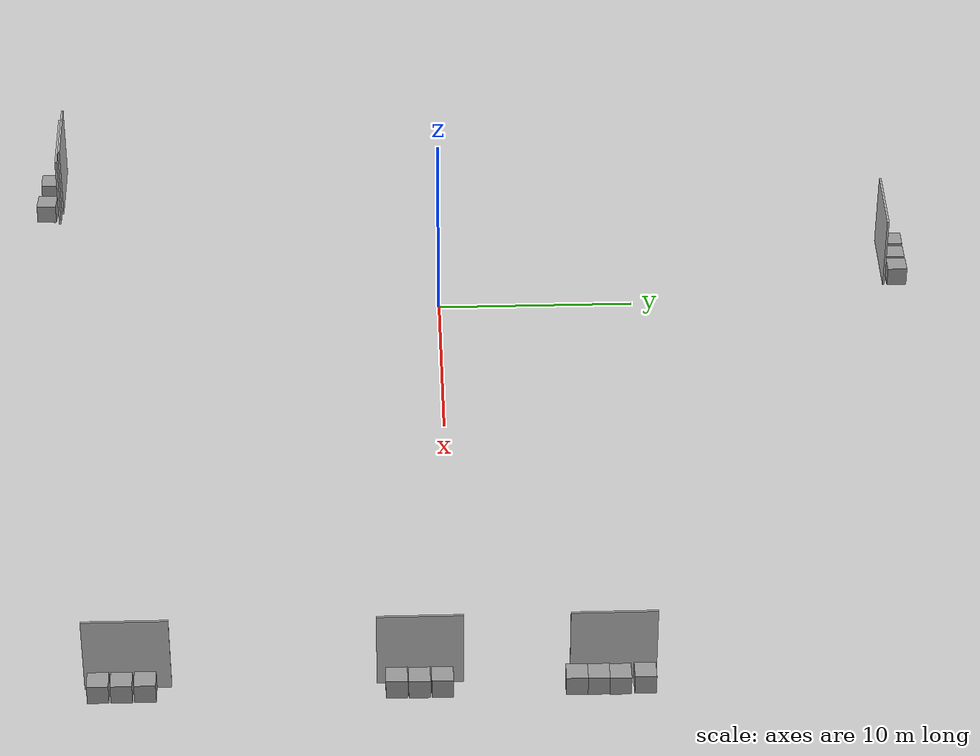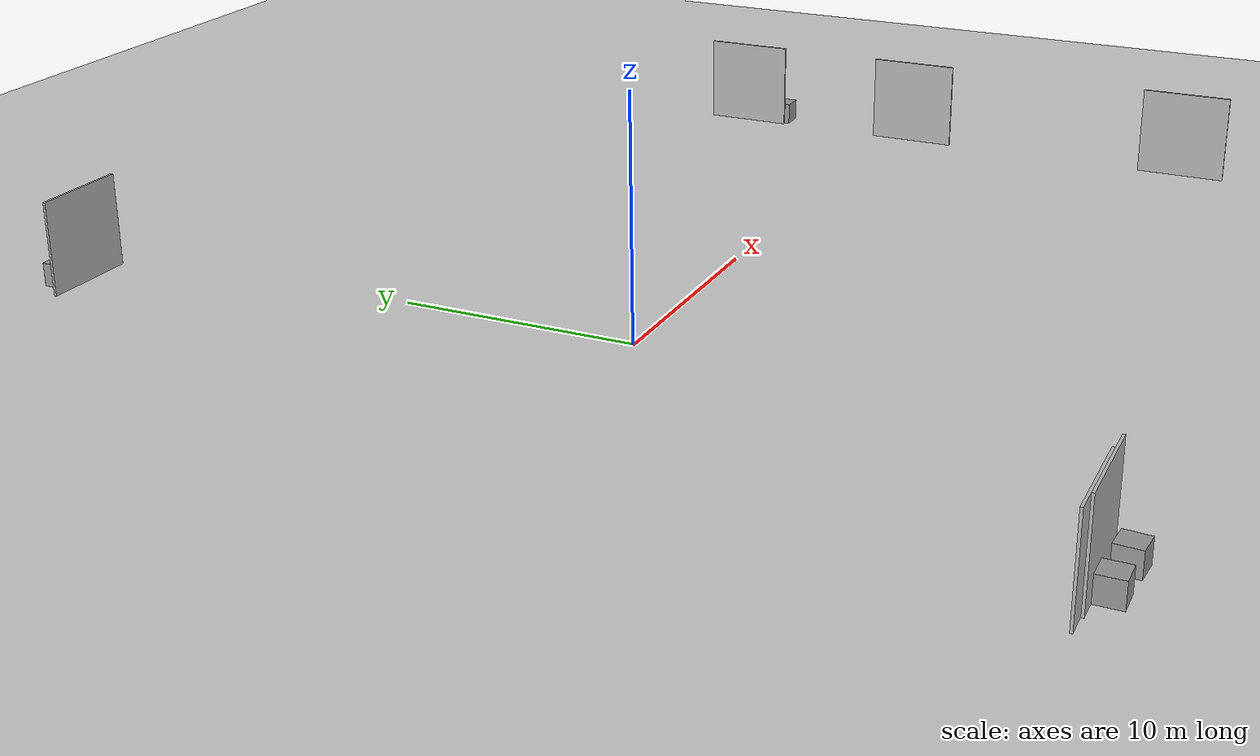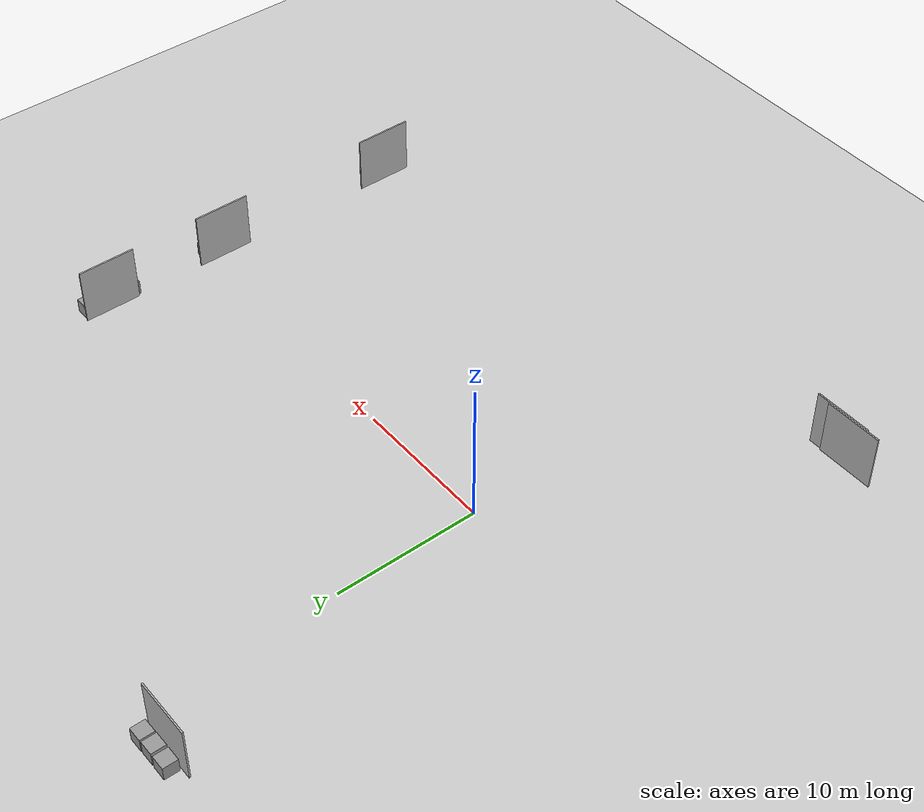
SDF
<sdf version="1.6">
 <world name="default">
  <model name="ground_plane">
   <static>1</static>
   <link name="link">
    <collision name="collision">
     <geometry><plane><normal>0 0 1</normal><size>100 100</size></plane></geometry>
     <surface><friction><ode><mu>100</mu><mu2>50</mu2></ode></friction></surface>
    </collision>
    <visual name="visual">
     <cast_shadows>0</cast_shadows>
     <geometry><plane><normal>0 0 1</normal><size>100 100</size></plane></geometry>
     <material>
      <script><uri>file://media/materials/scripts/gazebo.material</uri><name>Gazebo/Grey</name></script>
     </material>
    </visual>
   </link>
  </model>
  <light name="sun" type="directional">
   <pose>0 0 10 0 -0 0</pose>
   <diffuse>0.8 0.8 0.8 1</diffuse>
   <specular>0.2 0.2 0.2 1</specular>
   <attenuation>
    <range>1000</range>
    <constant>0.9</constant>
    <linear>0.01</linear>
    <quadratic>0.001</quadratic>
   </attenuation>
   <direction>-0.5 0.1 -0.9</direction>
  </light>
  <gravity>0 0 -9.8</gravity>
  <magnetic_field>6e-06 2.3e-05 -4.2e-05</magnetic_field>
  <atmosphere type="adiabatic"/>
  <physics name="default_physics" default="0" type="ode">
   <max_step_size>0.001</max_step_size>
   <real_time_factor>1</real_time_factor>
   <real_time_update_rate>1000</real_time_update_rate>
  </physics>
  <scene><ambient>0.4 0.4 0.4 1</ambient><background>0.7 0.7 0.7 1</background><shadows>1</shadows></scene>
  <audio><device>default</device></audio>
  <spherical_coordinates>
   <surface_model>EARTH_WGS84</surface_model>
   <latitude_deg>0</latitude_deg>
   <longitude_deg>0</longitude_deg>
   <elevation>0</elevation>
   <heading_deg>0</heading_deg>
  </spherical_coordinates>
  <model name="unit_box_0">
   <pose>29.5694 -15.2995 0.499995 0 -1e-05 -0.001319</pose>
   <link name="link">
    <inertial>
     <mass>1</mass>
     <inertia>
      <ixx>0.166667</ixx>
      <ixy>0</ixy>
      <ixz>0</ixz>
      <iyy>0.166667</iyy>
      <iyz>0</iyz>
      <izz>0.166667</izz>
     </inertia>
    </inertial>
    <collision name="collision"><geometry><box><size>1 1 1</size></box></geometry></collision>
    <visual name="visual">
     <geometry><box><size>1 1 1</size></box></geometry>
     <material>
      <script><name>Gazebo/Grey</name><uri>file://media/materials/scripts/gazebo.material</uri></script>
     </material>
    </visual>
   </link>
  </model>
  <model name="unit_box_1">
   <pose>29.6409 -1.65629 0.499995 1e-05 -0 -6e-06</pose>
   <link name="link">
    <inertial>
     <mass>1</mass>
     <inertia>
      <ixx>0.166667</ixx>
      <ixy>0</ixy>
      <ixz>0</ixz>
      <iyy>0.166667</iyy>
      <iyz>0</iyz>
      <izz>0.166667</izz>
     </inertia>
    </inertial>
    <collision name="collision"><geometry><box><size>1 1 1</size></box></geometry></collision>
    <visual name="visual">
     <geometry><box><size>1 1 1</size></box></geometry>
     <material>
      <script><name>Gazebo/Grey</name><uri>file://media/materials/scripts/gazebo.material</uri></script>
     </material>
    </visual>
   </link>
  </model>
  <model name="unit_box_2">
   <pose>29.6316 8.72066 0.499995 0 -1e-05 -0.004184</pose>
   <link name="link">
    <inertial>
     <mass>1</mass>
     <inertia>
      <ixx>0.166667</ixx>
      <ixy>0</ixy>
      <ixz>0</ixz>
      <iyy>0.166667</iyy>
      <iyz>0</iyz>
      <izz>0.166667</izz>
     </inertia>
    </inertial>
    <collision name="collision"><geometry><box><size>1 1 1</size></box></geometry></collision>
    <visual name="visual">
     <geometry><box><size>1 1 1</size></box></geometry>
     <material>
      <script><name>Gazebo/Grey</name><uri>file://media/materials/scripts/gazebo.material</uri></script>
     </material>
    </visual>
   </link>
  </model>
  <model name="unit_box_3">
   <pose>29.6754 7.57235 0.499995 0 -1e-05 -0.004337</pose>
   <link name="link">
    <inertial>
     <mass>1</mass>
     <inertia>
      <ixx>0.166667</ixx>
      <ixy>0</ixy>
      <ixz>0</ixz>
      <iyy>0.166667</iyy>
      <iyz>0</iyz>
      <izz>0.166667</izz>
     </inertia>
    </inertial>
    <collision name="collision"><geometry><box><size>1 1 1</size></box></geometry></collision>
    <visual name="visual">
     <geometry><box><size>1 1 1</size></box></geometry>
     <material>
      <script><name>Gazebo/Grey</name><uri>file://media/materials/scripts/gazebo.material</uri></script>
     </material>
    </visual>
   </link>
  </model>
  <model name="unit_box">
   <pose>-10.764 -20.5788 0.499995 -1e-05 0 0.000329</pose>
   <link name="link">
    <inertial>
     <mass>1</mass>
     <inertia>
      <ixx>0.166667</ixx>
      <ixy>0</ixy>
      <ixz>0</ixz>
      <iyy>0.166667</iyy>
      <iyz>0</iyz>
      <izz>0.166667</izz>
     </inertia>
    </inertial>
    <collision name="collision"><geometry><box><size>1 1 1</size></box></geometry></collision>
    <visual name="visual">
     <geometry><box><size>1 1 1</size></box></geometry>
     <material>
      <script><name>Gazebo/Grey</name><uri>file://media/materials/scripts/gazebo.material</uri></script>
     </material>
    </visual>
   </link>
  </model>
  <model name="unit_box_6">
   <pose>-8.82253 -20.7003 0.499998 4e-06 -0 -0.073141</pose>
   <link name="link">
    <inertial>
     <mass>1</mass>
     <inertia>
      <ixx>0.166667</ixx>
      <ixy>0</ixy>
      <ixz>0</ixz>
      <iyy>0.166667</iyy>
      <iyz>0</iyz>
      <izz>0.166667</izz>
     </inertia>
    </inertial>
    <collision name="collision"><geometry><box><size>1 1 1</size></box></geometry></collision>
    <visual name="visual">
     <geometry><box><size>1 1 1</size></box></geometry>
     <material>
      <script><name>Gazebo/Grey</name><uri>file://media/materials/scripts/gazebo.material</uri></script>
     </material>
    </visual>
   </link>
  </model>
  <model name="Van_gogh1">
   <pose>-4.76066 23.3314 2 -0 3.3e-05 1.56157</pose>
   <link name="box">
    <pose>0 -1.5 0 0 -0 0</pose>
    <collision name="collision"><geometry><box><size>0.1 4 4</size></box></geometry></collision>
    <visual name="visual">
     <geometry><box><size>0.1 4 4</size></box></geometry>
     <material>
      <script>
       <uri>model://van_gogh1/materials/scripts</uri>
       <uri>model://van_gogh1/materials/textures</uri>
       <name>Van_gogh1/Image</name>
      </script>
     </material>
    </visual>
    <inertial>
     <inertia><ixx>1</ixx><ixy>0</ixy><ixz>0</ixz><iyy>1</iyy><iyz>0</iyz><izz>1</izz></inertia>
     <mass>1</mass>
    </inertial>
   </link>
  </model>
  <model name="unit_box_4">
   <pose>-1.76028 23.9773 0.499995 1e-05 -0 1.9e-05</pose>
   <link name="link">
    <inertial>
     <mass>1</mass>
     <inertia>
      <ixx>0.166667</ixx>
      <ixy>0</ixy>
      <ixz>0</ixz>
      <iyy>0.166667</iyy>
      <iyz>0</iyz>
      <izz>0.166667</izz>
     </inertia>
    </inertial>
    <collision name="collision"><geometry><box><size>1 1 1</size></box></geometry></collision>
    <visual name="visual">
     <geometry><box><size>1 1 1</size></box></geometry>
     <material>
      <script><name>Gazebo/Grey</name><uri>file://media/materials/scripts/gazebo.material</uri></script>
     </material>
    </visual>
   </link>
  </model>
  <model name="unit_box_5">
   <pose>-2.86607 23.9664 0.499995 1e-05 -0 0</pose>
   <link name="link">
    <inertial>
     <mass>1</mass>
     <inertia>
      <ixx>0.166667</ixx>
      <ixy>0</ixy>
      <ixz>0</ixz>
      <iyy>0.166667</iyy>
      <iyz>0</iyz>
      <izz>0.166667</izz>
     </inertia>
    </inertial>
    <collision name="collision"><geometry><box><size>1 1 1</size></box></geometry></collision>
    <visual name="visual">
     <geometry><box><size>1 1 1</size></box></geometry>
     <material>
      <script><name>Gazebo/Grey</name><uri>file://media/materials/scripts/gazebo.material</uri></script>
     </material>
    </visual>
   </link>
  </model>
  <model name="unit_box_7">
   <pose>-4.0375 23.9801 0.499995 1e-05 -0 -0.011993</pose>
   <link name="link">
    <inertial>
     <mass>1</mass>
     <inertia>
      <ixx>0.166667</ixx>
      <ixy>0</ixy>
      <ixz>0</ixz>
      <iyy>0.166667</iyy>
      <iyz>0</iyz>
      <izz>0.166667</izz>
     </inertia>
    </inertial>
    <collision name="collision"><geometry><box><size>1 1 1</size></box></geometry></collision>
    <visual name="visual">
     <geometry><box><size>1 1 1</size></box></geometry>
     <material>
      <script><name>Gazebo/Grey</name><uri>file://media/materials/scripts/gazebo.material</uri></script>
     </material>
    </visual>
   </link>
  </model>
  <model name="Van_gogh1_0">
   <pose>29.0081 8.78444 2 -0 -2e-06 0.001567</pose>
   <link name="box">
    <pose>0 -1.5 0 0 -0 0</pose>
    <collision name="collision"><geometry><box><size>0.1 4 4</size></box></geometry></collision>
    <visual name="visual">
     <geometry><box><size>0.1 4 4</size></box></geometry>
     <material>
      <script>
       <uri>model://van_gogh1/materials/scripts</uri>
       <uri>model://van_gogh1/materials/textures</uri>
       <name>Van_gogh1/Image</name>
      </script>
     </material>
    </visual>
    <inertial>
     <inertia><ixx>1</ixx><ixy>0</ixy><ixz>0</ixz><iyy>1</iyy><iyz>0</iyz><izz>1</izz></inertia>
     <mass>1</mass>
    </inertial>
   </link>
  </model>
  <model name="unit_box_8">
   <pose>29.6461 6.57244 0.499995 0 -1e-05 -0.004304</pose>
   <link name="link">
    <inertial>
     <mass>1</mass>
     <inertia>
      <ixx>0.166667</ixx>
      <ixy>0</ixy>
      <ixz>0</ixz>
      <iyy>0.166667</iyy>
      <iyz>0</iyz>
      <izz>0.166667</izz>
     </inertia>
    </inertial>
    <collision name="collision"><geometry><box><size>1 1 1</size></box></geometry></collision>
    <visual name="visual">
     <geometry><box><size>1 1 1</size></box></geometry>
     <material>
      <script><name>Gazebo/Grey</name><uri>file://media/materials/scripts/gazebo.material</uri></script>
     </material>
    </visual>
   </link>
  </model>
  <model name="unit_box_9">
   <pose>29.6379 5.57242 0.499995 0 -1e-05 -0.004268</pose>
   <link name="link">
    <inertial>
     <mass>1</mass>
     <inertia>
      <ixx>0.166667</ixx>
      <ixy>0</ixy>
      <ixz>0</ixz>
      <iyy>0.166667</iyy>
      <iyz>0</iyz>
      <izz>0.166667</izz>
     </inertia>
    </inertial>
    <collision name="collision"><geometry><box><size>1 1 1</size></box></geometry></collision>
    <visual name="visual">
     <geometry><box><size>1 1 1</size></box></geometry>
     <material>
      <script><name>Gazebo/Grey</name><uri>file://media/materials/scripts/gazebo.material</uri></script>
     </material>
    </visual>
   </link>
  </model>
  <model name="Wall_painting1">
   <pose>29.0299 -0.097745 2 0 -0 8e-06</pose>
   <link name="box">
    <pose>0 -1.5 0 0 -0 0</pose>
    <collision name="collision"><geometry><box><size>0.1 4 4</size></box></geometry></collision>
    <visual name="visual">
     <geometry><box><size>0.1 4 4</size></box></geometry>
     <material>
      <script>
       <uri>model://wall_painting1/materials/scripts</uri>
       <uri>model://wall_painting1/materials/textures</uri>
       <name>Wall_painting1/Image</name>
      </script>
     </material>
    </visual>
    <inertial>
     <inertia><ixx>1</ixx><ixy>0</ixy><ixz>0</ixz><iyy>1</iyy><iyz>0</iyz><izz>1</izz></inertia>
     <mass>1</mass>
    </inertial>
   </link>
  </model>
  <model name="unit_box_1_clone">
   <pose>29.6283 -0.598212 0.499995 0 -1e-05 -5e-06</pose>
   <link name="link">
    <inertial>
     <mass>1</mass>
     <inertia>
      <ixx>0.166667</ixx>
      <ixy>0</ixy>
      <ixz>0</ixz>
      <iyy>0.166667</iyy>
      <iyz>0</iyz>
      <izz>0.166667</izz>
     </inertia>
    </inertial>
    <collision name="collision"><geometry><box><size>1 1 1</size></box></geometry></collision>
    <visual name="visual">
     <geometry><box><size>1 1 1</size></box></geometry>
     <material>
      <script><name>Gazebo/Grey</name><uri>file://media/materials/scripts/gazebo.material</uri></script>
     </material>
    </visual>
   </link>
  </model>
  <model name="unit_box_1_clone_0">
   <pose>29.6108 -2.70263 0.499995 1e-05 -0 -5e-06</pose>
   <link name="link">
    <inertial>
     <mass>1</mass>
     <inertia>
      <ixx>0.166667</ixx>
      <ixy>0</ixy>
      <ixz>0</ixz>
      <iyy>0.166667</iyy>
      <iyz>0</iyz>
      <izz>0.166667</izz>
     </inertia>
    </inertial>
    <collision name="collision"><geometry><box><size>1 1 1</size></box></geometry></collision>
    <visual name="visual">
     <geometry><box><size>1 1 1</size></box></geometry>
     <material>
      <script><name>Gazebo/Grey</name><uri>file://media/materials/scripts/gazebo.material</uri></script>
     </material>
    </visual>
   </link>
  </model>
  <model name="Van_gogh12">
   <pose>29.007 -13.5362 2 0 -0 0</pose>
   <link name="box">
    <pose>0 -1.5 0 0 -0 0</pose>
    <collision name="collision"><geometry><box><size>0.1 4 4</size></box></geometry></collision>
    <visual name="visual">
     <geometry><box><size>0.1 4 4</size></box></geometry>
     <material>
      <script>
       <uri>model://van_gogh12/materials/scripts</uri>
       <uri>model://van_gogh12/materials/textures</uri>
       <name>Van_gogh12/Image</name>
      </script>
     </material>
    </visual>
    <inertial>
     <inertia><ixx>1</ixx><ixy>0</ixy><ixz>0</ixz><iyy>1</iyy><iyz>0</iyz><izz>1</izz></inertia>
     <mass>1</mass>
    </inertial>
   </link>
  </model>
  <model name="unit_box_0_clone">
   <pose>29.5572 -14.2163 0.499995 -1e-05 -0 4e-05</pose>
   <link name="link">
    <inertial>
     <mass>1</mass>
     <inertia>
      <ixx>0.166667</ixx>
      <ixy>0</ixy>
      <ixz>0</ixz>
      <iyy>0.166667</iyy>
      <iyz>0</iyz>
      <izz>0.166667</izz>
     </inertia>
    </inertial>
    <collision name="collision"><geometry><box><size>1 1 1</size></box></geometry></collision>
    <visual name="visual">
     <geometry><box><size>1 1 1</size></box></geometry>
     <material>
      <script><name>Gazebo/Grey</name><uri>file://media/materials/scripts/gazebo.material</uri></script>
     </material>
    </visual>
   </link>
  </model>
  <model name="unit_box_0_clone_0">
   <pose>29.5584 -16.3784 0.499995 -1e-05 -0 -0.000364</pose>
   <link name="link">
    <inertial>
     <mass>1</mass>
     <inertia>
      <ixx>0.166667</ixx>
      <ixy>0</ixy>
      <ixz>0</ixz>
      <iyy>0.166667</iyy>
      <iyz>0</iyz>
      <izz>0.166667</izz>
     </inertia>
    </inertial>
    <collision name="collision"><geometry><box><size>1 1 1</size></box></geometry></collision>
    <visual name="visual">
     <geometry><box><size>1 1 1</size></box></geometry>
     <material>
      <script><name>Gazebo/Grey</name><uri>file://media/materials/scripts/gazebo.material</uri></script>
     </material>
    </visual>
   </link>
  </model>
  <model name="Wall_painting1_0">
   <pose>-9.54322 -19.9283 2 2e-06 -0 -1.57079</pose>
   <link name="box">
    <pose>0 -1.5 0 0 -0 0</pose>
    <collision name="collision"><geometry><box><size>0.1 4 4</size></box></geometry></collision>
    <visual name="visual">
     <geometry><box><size>0.1 4 4</size></box></geometry>
     <material>
      <script>
       <uri>model://wall_painting1/materials/scripts</uri>
       <uri>model://wall_painting1/materials/textures</uri>
       <name>Wall_painting1/Image</name>
      </script>
     </material>
    </visual>
    <inertial>
     <inertia><ixx>1</ixx><ixy>0</ixy><ixz>0</ixz><iyy>1</iyy><iyz>0</iyz><izz>1</izz></inertia>
     <mass>1</mass>
    </inertial>
   </link>
  </model>
  <model name="Wall_painting1_0_clone">
   <pose>-8.60221 -20.0283 2 0 -0 -1.57079</pose>
   <link name="box">
    <pose>0 -1.5 0 0 -0 0</pose>
    <collision name="collision"><geometry><box><size>0.1 4 4</size></box></geometry></collision>
    <visual name="visual">
     <geometry><box><size>0.1 4 4</size></box></geometry>
     <material>
      <script>
       <uri>model://wall_painting1/materials/scripts</uri>
       <uri>model://wall_painting1/materials/textures</uri>
       <name>Wall_painting1/Image</name>
      </script>
     </material>
    </visual>
    <inertial>
     <inertia><ixx>1</ixx><ixy>0</ixy><ixz>0</ixz><iyy>1</iyy><iyz>0</iyz><izz>1</izz></inertia>
     <mass>1</mass>
    </inertial>
   </link>
  </model>
 </world>
</sdf>
